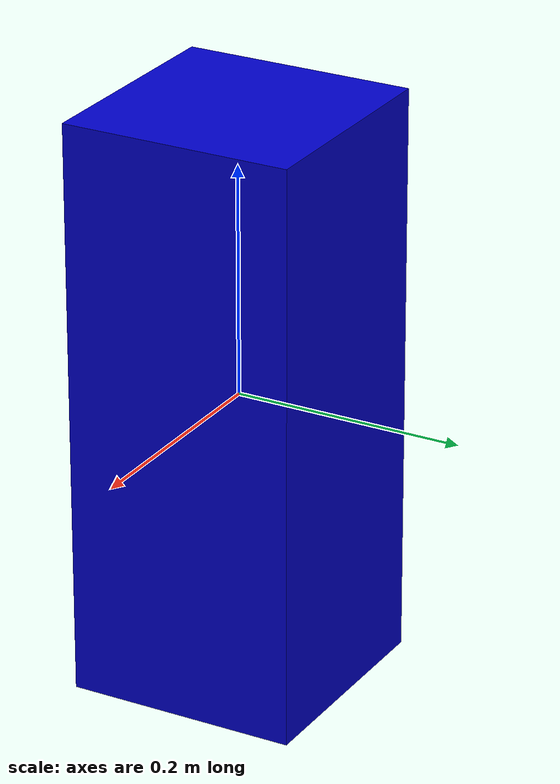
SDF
<?xml version="1.0"?>
<sdf version="1.6">
  <model name="minimal_humanoid">
    <link name="base_link">
      <visual name="visual">
        <geometry>
          <box>
            <size>0.2 0.2 0.5</size>
          </box>
        </geometry>
        <material>
          <ambient>0 0 0.8 1</ambient>
          <diffuse>0 0 0.8 1</diffuse>
          <specular>0 0 0 1</specular>
        </material>
      </visual>
      <collision name="collision">
        <geometry>
          <box>
            <size>0.2 0.2 0.5</size>
          </box>
        </geometry>
      </collision>
      <sensor name="depth_camera" type="depth">
        <pose>0.1 0 0.1 0 0 0</pose>
        <camera>
          <horizontal_fov>1.047</horizontal_fov>
          <image>
            <width>640</width>
            <height>480</height>
            <format>R8G8B8</format>
          </image>
          <clip>
            <near>0.1</near>
            <far>10</far>
          </clip>
        </camera>
        <always_on>1</always_on>
        <update_rate>30</update_rate>
        <visualize>true</visualize>
        <plugin name="depth_camera_controller" filename="libgazebo_ros_depth_camera.so">
          <ros>
            <namespace>depth_camera</namespace>
            <argument>--ros-args -r __ns:=/camera</argument>
            <argument>--ros-args -r image:=image_raw</argument>
            <argument>--ros-args -r depth:=depth_raw</argument>
            <argument>--ros-args -r camer-info:=camer-info</argument>
          </ros>
          <cameraName>depth_camera</cameraName>
          <frameName>camera_depth_frame</frameName>
        </plugin>
      </sensor>
    </link>

    <link name="head_link">
      <visual name="visual">
        <geometry>
          <sphere>
            <radius>0.1</radius>
          </sphere>
        </geometry>
        <material>
          <ambient>0.8 0 0 1</ambient>
          <diffuse>0.8 0 0 1</diffuse>
          <specular>0 0 0 1</specular>
        </material>
      </visual>
      <collision name="collision">
        <geometry>
          <sphere>
            <radius>0.1</radius>
          </sphere>
        </geometry>
      </collision>
    </link>

    <joint name="base_to_head_joint" type="fixed">
      <parent>base_link</parent>
      <child>head_link</child>
      <pose>0 0 0.35 0 0 0</pose>
    </joint>
  </model>
</sdf>
